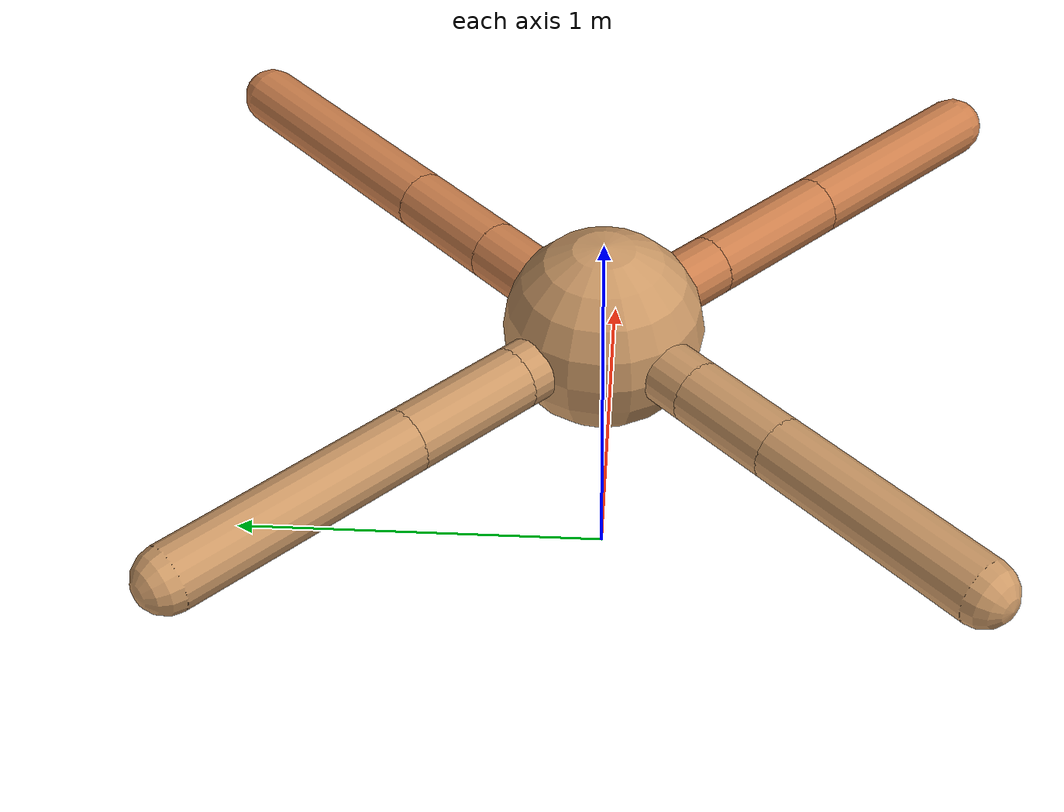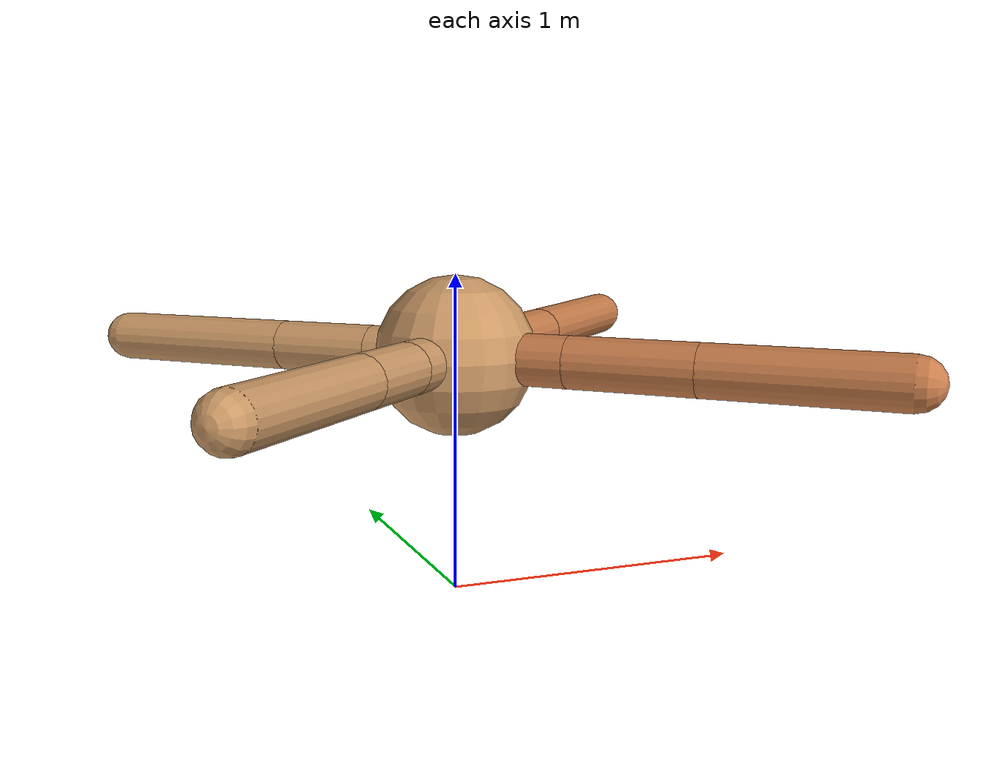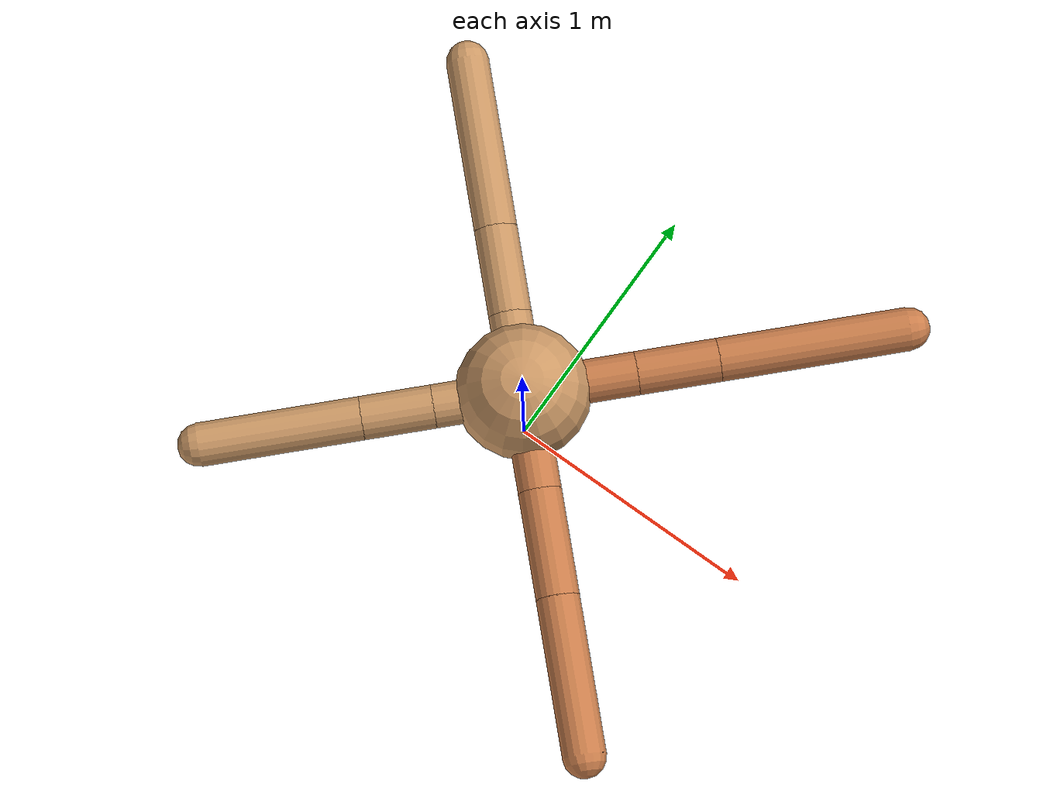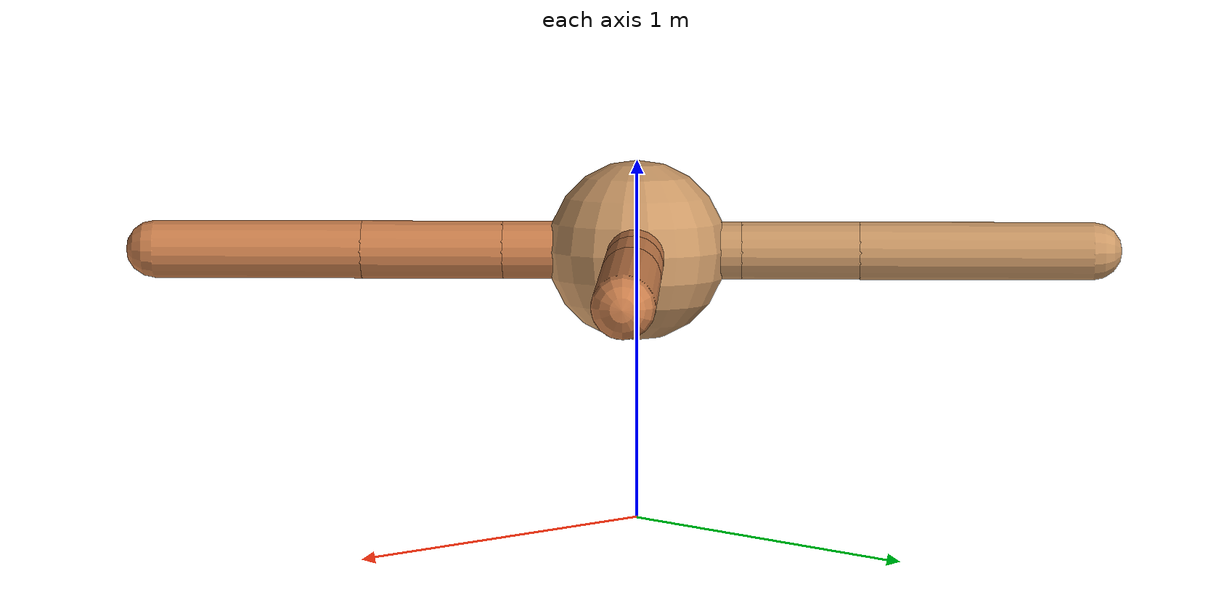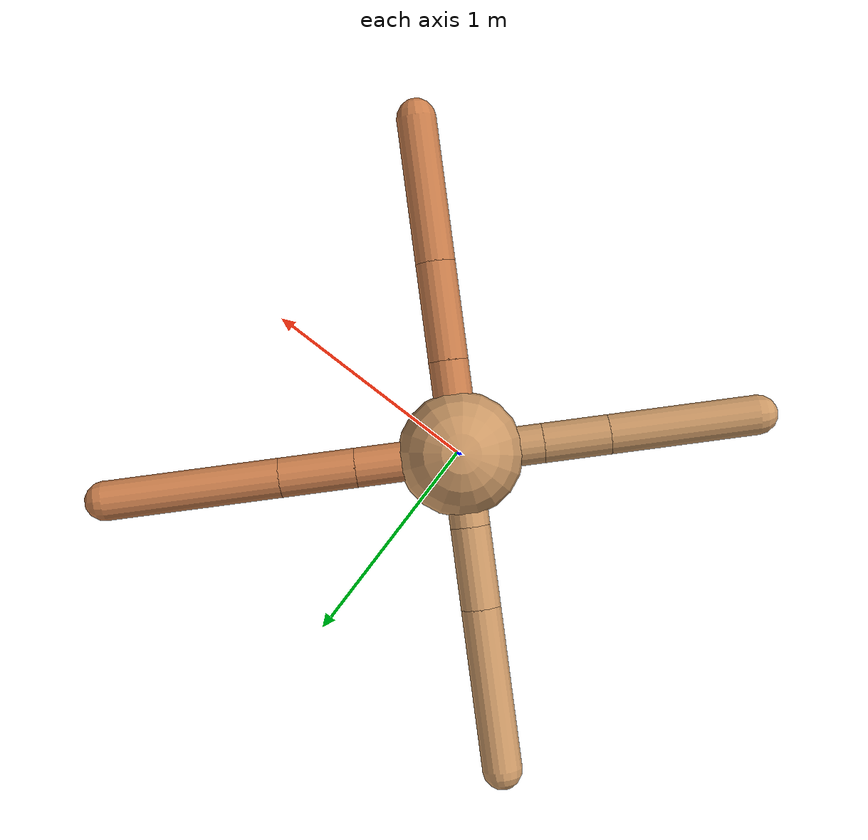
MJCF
<mujoco model="ant">
  <compiler angle="degree" coordinate="local" inertiafromgeom="true" />
  <option integrator="RK4" timestep="0.01" />
  <custom>
    <numeric data="0.0 0.0 0.55 1.0 0.0 0.0 0.0 0.0 1.0 0.0 -1.0 0.0 -1.0 0.0 1.0" name="init_qpos" />
  </custom>
  <default>
    <joint armature="1" damping="1" limited="true" />
    <geom conaffinity="0" condim="3" density="5.0" friction="1.5 0.1 0.1" margin="0.01" rgba="0.8 0.6 0.4 1" />
  </default>
  <worldbody>
    <body name="torso" pos="0 0 0.75">
      <geom name="torso_geom" pos="0 0 0" size="0.25" type="sphere" />

      <body name="front_left_leg" pos="0 0 0">
        <geom fromto="0.0 0.0 0.0 0.29567024956097626 0.29567024956097626 0.0" name="aux_1_geom" size="0.08" type="capsule" rgba=".8 .5 .3 1" />
        <body name="aux_1" pos="0.29567024956097626 0.29567024956097626 0.0">
          <joint axis="0 0 1" name="hip_1" pos="0.0 0.0 0.0" range="-40 40" type="hinge" />
          <geom fromto="0.0 0.0 0.0 0.2136346365768323 0.2136346365768323 0.0" name="left_leg_geom" size="0.08" type="capsule" rgba=".8 .5 .3 1" />
          <body pos="0.2136346365768323 0.2136346365768323 0.0" name="front_left_foot">
            <joint axis="-1 1 0" name="ankle_1" pos="0.0 0.0 0.0" range="30 100" type="hinge" />
            <geom fromto="0.0 0.0 0.0 0.49564861931670223 0.49564861931670223 0.0" name="left_ankle_geom" size="0.08" type="capsule" rgba=".8 .5 .3 1" />
          </body>
        </body>
      </body>
      <body name="front_right_leg" pos="0 0 0">
        <geom fromto="0.0 0.0 0.0 -0.20458978187671778 0.20458978187671778 0.0" name="aux_2_geom" size="0.08" type="capsule" />
        <body name="aux_2" pos="-0.20458978187671778 0.20458978187671778 0.0">
          <joint axis="0 0 1" name="hip_2" pos="0.0 0.0 0.0" range="-40 40" type="hinge" />
          <geom fromto="0.0 0.0 0.0 -0.23060809661109635 0.23060809661109635 0.0" name="right_leg_geom" size="0.08" type="capsule" />
          <body pos="-0.23060809661109635 0.23060809661109635 0.0" name="front_right_foot">
            <joint axis="1 1 0" name="ankle_2" pos="0.0 0.0 0.0" range="-100 -30" type="hinge" />
            <geom fromto="0.0 0.0 0.0 -0.45687298215517436 0.45687298215517436 0.0" name="right_ankle_geom" size="0.08" type="capsule" />
          </body>
        </body>
      </body>
      <body name="left_back_leg" pos="0 0 0">
        <geom fromto="0.0 0.0 0.0 -0.23239118163005046 -0.23239118163005046 0.0" name="aux_3_geom" size="0.08" type="capsule" />
        <body name="aux_3" pos="-0.23239118163005046 -0.23239118163005046 0.0">
          <joint axis="0 0 1" name="hip_3" pos="0.0 0.0 0.0" range="-40 40" type="hinge" />
          <geom fromto="0.0 0.0 0.0 -0.1864187144651174 -0.1864187144651174 0.0" name="back_leg_geom" size="0.08" type="capsule" />
          <body pos="-0.1864187144651174 -0.1864187144651174 0.0" name="left_back_foot">
            <joint axis="-1 1 0" name="ankle_3" pos="0.0 0.0 0.0" range="-100 -30" type="hinge" />
            <geom fromto="0.0 0.0 0.0 -0.4202450799534254 -0.4202450799534254 0.0" name="third_ankle_geom" size="0.08" type="capsule" />
          </body>
        </body>
      </body>
      <body name="right_back_leg" pos="0 0 0">
        <geom fromto="0.0 0.0 0.0 0.2624643459386322 -0.2624643459386322 0.0" name="aux_4_geom" size="0.08" type="capsule" rgba=".8 .5 .3 1" />
        <body name="aux_4" pos="0.2624643459386322 -0.2624643459386322 0.0">
          <joint axis="0 0 1" name="hip_4" pos="0.0 0.0 0.0" range="-40 40" type="hinge" />
          <geom fromto="0.0 0.0 0.0 0.27709029109493893 -0.27709029109493893 0.0" name="rightback_leg_geom" size="0.08" type="capsule" rgba=".8 .5 .3 1" />
          <body pos="0.27709029109493893 -0.27709029109493893 0.0" name="right_back_foot">
            <joint axis="1 1 0" name="ankle_4" pos="0.0 0.0 0.0" range="30 100" type="hinge" />
            <geom fromto="0.0 0.0 0.0 0.40881225551671013 -0.40881225551671013 0.0" name="fourth_ankle_geom" size="0.08" type="capsule" rgba=".8 .5 .3 1" />
          </body>
        </body>
      </body>
    </body>
  </worldbody>
  <actuator>
    <motor ctrllimited="true" ctrlrange="-1.0 1.0" joint="hip_4" gear="150" />
    <motor ctrllimited="true" ctrlrange="-1.0 1.0" joint="ankle_4" gear="150" />
    <motor ctrllimited="true" ctrlrange="-1.0 1.0" joint="hip_1" gear="150" />
    <motor ctrllimited="true" ctrlrange="-1.0 1.0" joint="ankle_1" gear="150" />
    <motor ctrllimited="true" ctrlrange="-1.0 1.0" joint="hip_2" gear="150" />
    <motor ctrllimited="true" ctrlrange="-1.0 1.0" joint="ankle_2" gear="150" />
    <motor ctrllimited="true" ctrlrange="-1.0 1.0" joint="hip_3" gear="150" />
    <motor ctrllimited="true" ctrlrange="-1.0 1.0" joint="ankle_3" gear="150" />
  </actuator>
</mujoco>
